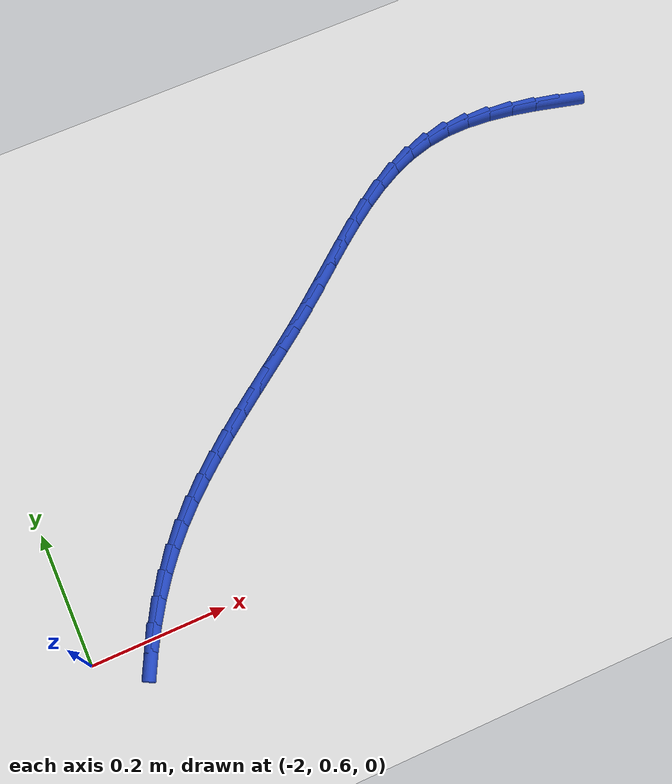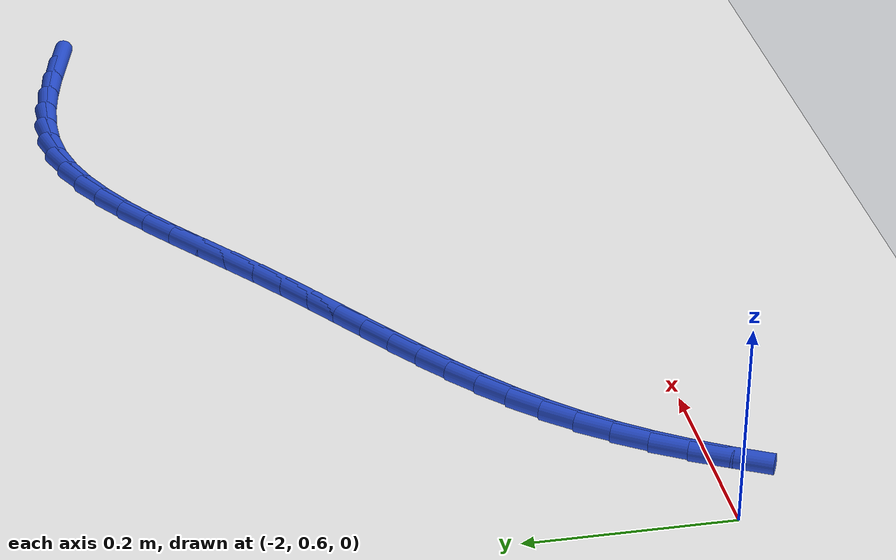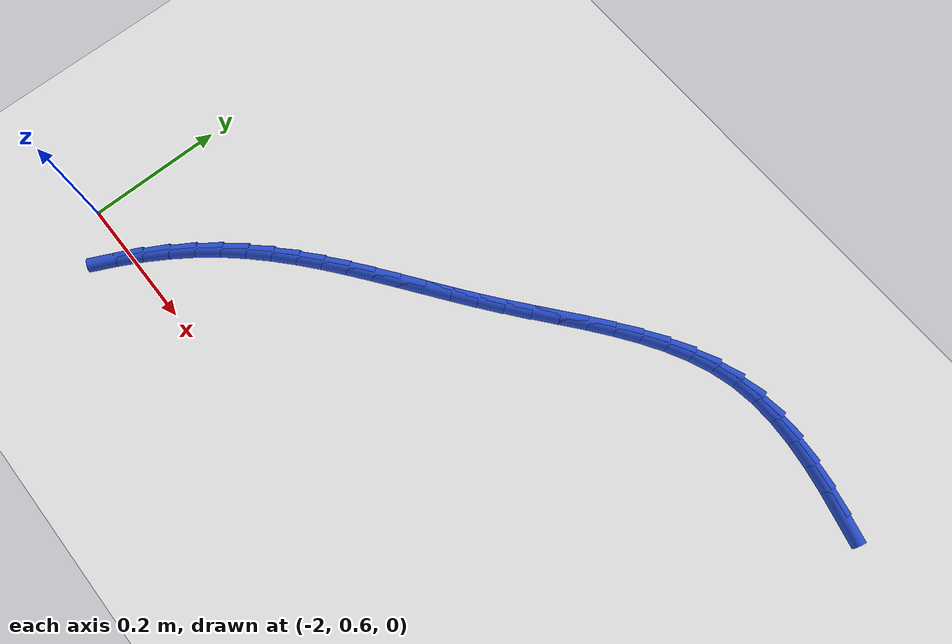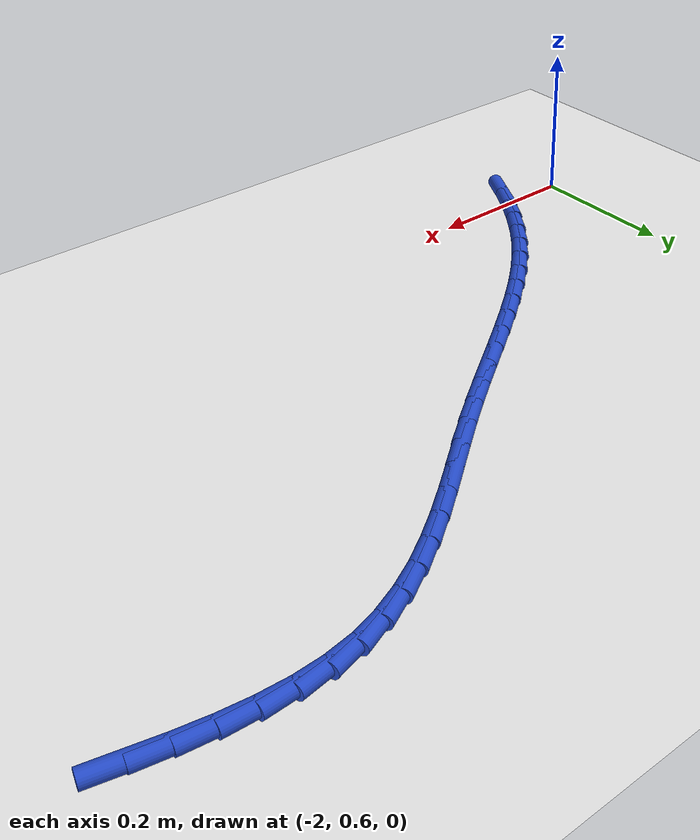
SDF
<sdf version="1.6">
 <world name="default">
  <model name="ground_plane">
   <static>1</static>
   <link name="link">
    <collision name="collision">
     <geometry><plane><normal>0 0 1</normal><size>100 100</size></plane></geometry>
     <surface><friction><ode><mu>100</mu><mu2>50</mu2></ode></friction></surface>
    </collision>
    <visual name="visual">
     <cast_shadows>0</cast_shadows>
     <geometry><plane><normal>0 0 1</normal><size>100 100</size></plane></geometry>
     <material>
      <script><uri>file://media/materials/scripts/gazebo.material</uri><name>Gazebo/WhiteGlow</name></script>
     </material>
    </visual>
   </link>
  </model>
  <model name="line">
   <link name="link_44">
    <pose>-1.0165145318548088 1.1184197547168324 0.01 0 1.57 -0.24702548095925173</pose>
    <collision name="collision">
     <geometry><cylinder><radius>0.01</radius><length>0.08</length></cylinder></geometry>
    </collision>
    <visual name="visual">
     <material>
      <script><name>Gazebo/Blue</name><uri>file://media/materials/scripts/gazebo.material</uri></script>
     </material>
     <geometry><cylinder><radius>0.01</radius><length>0.08</length></cylinder></geometry>
    </visual>
   </link>
   <link name="link_45">
    <pose>-1.0539521439984387 1.1278606167698348 0.01 0 1.57 -0.2060514984577185</pose>
    <collision name="collision">
     <geometry><cylinder><radius>0.01</radius><length>0.08</length></cylinder></geometry>
    </collision>
    <visual name="visual">
     <material>
      <script><name>Gazebo/Blue</name><uri>file://media/materials/scripts/gazebo.material</uri></script>
     </material>
     <geometry><cylinder><radius>0.01</radius><length>0.08</length></cylinder></geometry>
    </visual>
   </link>
   <link name="link_46">
    <pose>-1.0911970225874292 1.1356454672963472 0.01 0 1.57 -0.1489182472577403</pose>
    <collision name="collision">
     <geometry><cylinder><radius>0.01</radius><length>0.08</length></cylinder></geometry>
    </collision>
    <visual name="visual">
     <material>
      <script><name>Gazebo/Blue</name><uri>file://media/materials/scripts/gazebo.material</uri></script>
     </material>
     <geometry><cylinder><radius>0.01</radius><length>0.08</length></cylinder></geometry>
    </visual>
   </link>
   <link name="link_47">
    <pose>-1.1280743327699527 1.1411781309244975 0.01 0 1.57 -0.07374269235701547</pose>
    <collision name="collision">
     <geometry><cylinder><radius>0.01</radius><length>0.08</length></cylinder></geometry>
    </collision>
    <visual name="visual">
     <material>
      <script><name>Gazebo/Blue</name><uri>file://media/materials/scripts/gazebo.material</uri></script>
     </material>
     <geometry><cylinder><radius>0.01</radius><length>0.08</length></cylinder></geometry>
    </visual>
   </link>
   <link name="link_48">
    <pose>-1.1644092396941828 1.1438624322824136 0.01 0 1.57 0.021341117797742396</pose>
    <collision name="collision">
     <geometry><cylinder><radius>0.01</radius><length>0.08</length></cylinder></geometry>
    </collision>
    <visual name="visual">
     <material>
      <script><name>Gazebo/Blue</name><uri>file://media/materials/scripts/gazebo.material</uri></script>
     </material>
     <geometry><cylinder><radius>0.01</radius><length>0.08</length></cylinder></geometry>
    </visual>
   </link>
   <link name="link_49">
    <pose>-1.2000269085082929 1.1431021959982233 0.01 0 1.57 0.13738300438065437</pose>
    <collision name="collision">
     <geometry><cylinder><radius>0.01</radius><length>0.08</length></cylinder></geometry>
    </collision>
    <visual name="visual">
     <material>
      <script><name>Gazebo/Blue</name><uri>file://media/materials/scripts/gazebo.material</uri></script>
     </material>
     <geometry><cylinder><radius>0.01</radius><length>0.08</length></cylinder></geometry>
    </visual>
   </link>
   <link name="link_50">
    <pose>-1.2347525043658543 1.1383012467203608 0.01 0 1.57 0.2673403412451808</pose>
    <collision name="collision">
     <geometry><cylinder><radius>0.01</radius><length>0.08</length></cylinder></geometry>
    </collision>
    <visual name="visual">
     <material>
      <script><name>Gazebo/Blue</name><uri>file://media/materials/scripts/gazebo.material</uri></script>
     </material>
     <geometry><cylinder><radius>0.01</radius><length>0.08</length></cylinder></geometry>
    </visual>
   </link>
   <link name="link_51">
    <pose>-1.2684654268030346 1.1290673831311249 0.01 0 1.57 0.3841018119666909</pose>
    <collision name="collision">
     <geometry><cylinder><radius>0.01</radius><length>0.08</length></cylinder></geometry>
    </collision>
    <visual name="visual">
     <material>
      <script><name>Gazebo/Blue</name><uri>file://media/materials/scripts/gazebo.material</uri></script>
     </material>
     <geometry><cylinder><radius>0.01</radius><length>0.08</length></cylinder></geometry>
    </visual>
   </link>
   <link name="link_52">
    <pose>-1.301259003675692 1.1158129824889484 0.01 0 1.57 0.47985480022445526</pose>
    <collision name="collision">
     <geometry><cylinder><radius>0.01</radius><length>0.08</length></cylinder></geometry>
    </collision>
    <visual name="visual">
     <material>
      <script><name>Gazebo/Blue</name><uri>file://media/materials/scripts/gazebo.material</uri></script>
     </material>
     <geometry><cylinder><radius>0.01</radius><length>0.08</length></cylinder></geometry>
    </visual>
   </link>
   <link name="link_53">
    <pose>-1.333279303023399 1.0991487764448922 0.01 0 1.57 0.5549856970457381</pose>
    <collision name="collision">
     <geometry><cylinder><radius>0.01</radius><length>0.08</length></cylinder></geometry>
    </collision>
    <visual name="visual">
     <material>
      <script><name>Gazebo/Blue</name><uri>file://media/materials/scripts/gazebo.material</uri></script>
     </material>
     <geometry><cylinder><radius>0.01</radius><length>0.08</length></cylinder></geometry>
    </visual>
   </link>
   <link name="link_54">
    <pose>-1.3646723928857292 1.0796854966500178 0.01 0 1.57 0.6110137558843318</pose>
    <collision name="collision">
     <geometry><cylinder><radius>0.01</radius><length>0.08</length></cylinder></geometry>
    </collision>
    <visual name="visual">
     <material>
      <script><name>Gazebo/Blue</name><uri>file://media/materials/scripts/gazebo.material</uri></script>
     </material>
     <geometry><cylinder><radius>0.01</radius><length>0.08</length></cylinder></geometry>
    </visual>
   </link>
   <link name="link_55">
    <pose>-1.3955843413022553 1.0580338747553857 0.01 0 1.57 0.6496798531786511</pose>
    <collision name="collision">
     <geometry><cylinder><radius>0.01</radius><length>0.08</length></cylinder></geometry>
    </collision>
    <visual name="visual">
     <material>
      <script><name>Gazebo/Blue</name><uri>file://media/materials/scripts/gazebo.material</uri></script>
     </material>
     <geometry><cylinder><radius>0.01</radius><length>0.08</length></cylinder></geometry>
    </visual>
   </link>
   <link name="link_56">
    <pose>-1.4261612163125503 1.0348046424120578 0.01 0 1.57 0.6724455371051267</pose>
    <collision name="collision">
     <geometry><cylinder><radius>0.01</radius><length>0.08</length></cylinder></geometry>
    </collision>
    <visual name="visual">
     <material>
      <script><name>Gazebo/Blue</name><uri>file://media/materials/scripts/gazebo.material</uri></script>
     </material>
     <geometry><cylinder><radius>0.01</radius><length>0.08</length></cylinder></geometry>
    </visual>
   </link>
   <link name="link_57">
    <pose>-1.4565490859561874 1.0106085312710953 0.01 0 1.57 0.6802686006759554</pose>
    <collision name="collision">
     <geometry><cylinder><radius>0.01</radius><length>0.08</length></cylinder></geometry>
    </collision>
    <visual name="visual">
     <material>
      <script><name>Gazebo/Blue</name><uri>file://media/materials/scripts/gazebo.material</uri></script>
     </material>
     <geometry><cylinder><radius>0.01</radius><length>0.08</length></cylinder></geometry>
    </visual>
   </link>
   <link name="link_58">
    <pose>-1.4868940182727397 0.9860562729835587 0.01 0 1.57 0.673522637209146</pose>
    <collision name="collision">
     <geometry><cylinder><radius>0.01</radius><length>0.08</length></cylinder></geometry>
    </collision>
    <visual name="visual">
     <material>
      <script><name>Gazebo/Blue</name><uri>file://media/materials/scripts/gazebo.material</uri></script>
     </material>
     <geometry><cylinder><radius>0.01</radius><length>0.08</length></cylinder></geometry>
    </visual>
   </link>
   <link name="link_59">
    <pose>-1.51734208130178 0.96175859920051 0.01 0 1.57 0.6540397710297732</pose>
    <collision name="collision">
     <geometry><cylinder><radius>0.01</radius><length>0.08</length></cylinder></geometry>
    </collision>
    <visual name="visual">
     <material>
      <script><name>Gazebo/Blue</name><uri>file://media/materials/scripts/gazebo.material</uri></script>
     </material>
     <geometry><cylinder><radius>0.01</radius><length>0.08</length></cylinder></geometry>
    </visual>
   </link>
   <link name="link_60">
    <pose>-1.5480107119347557 0.9382480739268022 0.01 0 1.57 0.635792416085352</pose>
    <collision name="collision">
     <geometry><cylinder><radius>0.01</radius><length>0.08</length></cylinder></geometry>
    </collision>
    <visual name="visual">
     <material>
      <script><name>Gazebo/Blue</name><uri>file://media/materials/scripts/gazebo.material</uri></script>
     </material>
     <geometry><cylinder><radius>0.01</radius><length>0.08</length></cylinder></geometry>
    </visual>
   </link>
   <link name="link_61">
    <pose>-1.57881757879436 0.9155118616154941 0.01 0 1.57 0.6250317245496357</pose>
    <collision name="collision">
     <geometry><cylinder><radius>0.01</radius><length>0.08</length></cylinder></geometry>
    </collision>
    <visual name="visual">
     <material>
      <script><name>Gazebo/Blue</name><uri>file://media/materials/scripts/gazebo.material</uri></script>
     </material>
     <geometry><cylinder><radius>0.01</radius><length>0.08</length></cylinder></geometry>
    </visual>
   </link>
   <link name="link_62">
    <pose>-1.6095952434443568 0.893304770739963 0.01 0 1.57 0.6219937897256107</pose>
    <collision name="collision">
     <geometry><cylinder><radius>0.01</radius><length>0.08</length></cylinder></geometry>
    </collision>
    <visual name="visual">
     <material>
      <script><name>Gazebo/Blue</name><uri>file://media/materials/scripts/gazebo.material</uri></script>
     </material>
     <geometry><cylinder><radius>0.01</radius><length>0.08</length></cylinder></geometry>
    </visual>
   </link>
   <link name="link_63">
    <pose>-1.6401759522867247 0.8713807493311486 0.01 0 1.57 0.6268829764432666</pose>
    <collision name="collision">
     <geometry><cylinder><radius>0.01</radius><length>0.08</length></cylinder></geometry>
    </collision>
    <visual name="visual">
     <material>
      <script><name>Gazebo/Blue</name><uri>file://media/materials/scripts/gazebo.material</uri></script>
     </material>
     <geometry><cylinder><radius>0.01</radius><length>0.08</length></cylinder></geometry>
    </visual>
   </link>
   <link name="link_64">
    <pose>-1.6703919517234425 0.8494937454199915 0.01 0 1.57 0.6398990941847968</pose>
    <collision name="collision">
     <geometry><cylinder><radius>0.01</radius><length>0.08</length></cylinder></geometry>
    </collision>
    <visual name="visual">
     <material>
      <script><name>Gazebo/Blue</name><uri>file://media/materials/scripts/gazebo.material</uri></script>
     </material>
     <geometry><cylinder><radius>0.01</radius><length>0.08</length></cylinder></geometry>
    </visual>
   </link>
   <link name="link_65">
    <pose>-1.7000754881564892 0.8273977070374312 0.01 0 1.57 0.6612267923600502</pose>
    <collision name="collision">
     <geometry><cylinder><radius>0.01</radius><length>0.08</length></cylinder></geometry>
    </collision>
    <visual name="visual">
     <material>
      <script><name>Gazebo/Blue</name><uri>file://media/materials/scripts/gazebo.material</uri></script>
     </material>
     <geometry><cylinder><radius>0.01</radius><length>0.08</length></cylinder></geometry>
    </visual>
   </link>
   <link name="link_66">
    <pose>-1.7290588079878437 0.8048465822144079 0.01 0 1.57 0.6910072669242875</pose>
    <collision name="collision">
     <geometry><cylinder><radius>0.01</radius><length>0.08</length></cylinder></geometry>
    </collision>
    <visual name="visual">
     <material>
      <script><name>Gazebo/Blue</name><uri>file://media/materials/scripts/gazebo.material</uri></script>
     </material>
     <geometry><cylinder><radius>0.01</radius><length>0.08</length></cylinder></geometry>
    </visual>
   </link>
   <link name="link_67">
    <pose>-1.7571741576194844 0.7815943189818613 0.01 0 1.57 0.7292905013304184</pose>
    <collision name="collision">
     <geometry><cylinder><radius>0.01</radius><length>0.08</length></cylinder></geometry>
    </collision>
    <visual name="visual">
     <material>
      <script><name>Gazebo/Blue</name><uri>file://media/materials/scripts/gazebo.material</uri></script>
     </material>
     <geometry><cylinder><radius>0.01</radius><length>0.08</length></cylinder></geometry>
    </visual>
   </link>
   <link name="link_68">
    <pose>-1.7842537834533905 0.7573948653707318 0.01 0 1.57 0.7759686910490545</pose>
    <collision name="collision">
     <geometry><cylinder><radius>0.01</radius><length>0.08</length></cylinder></geometry>
    </collision>
    <visual name="visual">
     <material>
      <script><name>Gazebo/Blue</name><uri>file://media/materials/scripts/gazebo.material</uri></script>
     </material>
     <geometry><cylinder><radius>0.01</radius><length>0.08</length></cylinder></geometry>
    </visual>
   </link>
   <link name="link_69">
    <pose>-1.810129931891541 0.7320021694119586 0.01 0 1.57 0.830696585913395</pose>
    <collision name="collision">
     <geometry><cylinder><radius>0.01</radius><length>0.08</length></cylinder></geometry>
    </collision>
    <visual name="visual">
     <material>
      <script><name>Gazebo/Blue</name><uri>file://media/materials/scripts/gazebo.material</uri></script>
     </material>
     <geometry><cylinder><radius>0.01</radius><length>0.08</length></cylinder></geometry>
    </visual>
   </link>
   <link name="link_70">
    <pose>-1.834634849335914 0.7051701791364826 0.01 0 1.57 0.8916674767894203</pose>
    <collision name="collision">
     <geometry><cylinder><radius>0.01</radius><length>0.08</length></cylinder></geometry>
    </collision>
    <visual name="visual">
     <material>
      <script><name>Gazebo/Blue</name><uri>file://media/materials/scripts/gazebo.material</uri></script>
     </material>
     <geometry><cylinder><radius>0.01</radius><length>0.08</length></cylinder></geometry>
    </visual>
   </link>
   <link name="link_71">
    <pose>-1.8576186269550128 0.6766974789372978 0.01 0 1.57 0.9511726552833784</pose>
    <collision name="collision">
     <geometry><cylinder><radius>0.01</radius><length>0.08</length></cylinder></geometry>
    </collision>
    <visual name="visual">
     <material>
      <script><name>Gazebo/Blue</name><uri>file://media/materials/scripts/gazebo.material</uri></script>
     </material>
     <geometry><cylinder><radius>0.01</radius><length>0.08</length></cylinder></geometry>
    </visual>
   </link>
   <link name="link_72">
    <pose>-1.8790434403462906 0.6466630178254958 0.01 0 1.57 1.0066979084277718</pose>
    <collision name="collision">
     <geometry><cylinder><radius>0.01</radius><length>0.08</length></cylinder></geometry>
    </collision>
    <visual name="visual">
     <material>
      <script><name>Gazebo/Blue</name><uri>file://media/materials/scripts/gazebo.material</uri></script>
     </material>
     <geometry><cylinder><radius>0.01</radius><length>0.08</length></cylinder></geometry>
    </visual>
   </link>
   <link name="link_73">
    <pose>-1.8989148807569096 0.615254343412021 0.01 0 1.57 1.0586630806997506</pose>
    <collision name="collision">
     <geometry><cylinder><radius>0.01</radius><length>0.08</length></cylinder></geometry>
    </collision>
    <visual name="visual">
     <material>
      <script><name>Gazebo/Blue</name><uri>file://media/materials/scripts/gazebo.material</uri></script>
     </material>
     <geometry><cylinder><radius>0.01</radius><length>0.08</length></cylinder></geometry>
    </visual>
   </link>
   <link name="link_74">
    <pose>-1.9172386341461525 0.5826592402178656 0.01 0 1.57 1.1075088829644675</pose>
    <collision name="collision">
     <geometry><cylinder><radius>0.01</radius><length>0.08</length></cylinder></geometry>
    </collision>
    <visual name="visual">
     <material>
      <script><name>Gazebo/Blue</name><uri>file://media/materials/scripts/gazebo.material</uri></script>
     </material>
     <geometry><cylinder><radius>0.01</radius><length>0.08</length></cylinder></geometry>
    </visual>
   </link>
  </model>
 </world>
</sdf>
